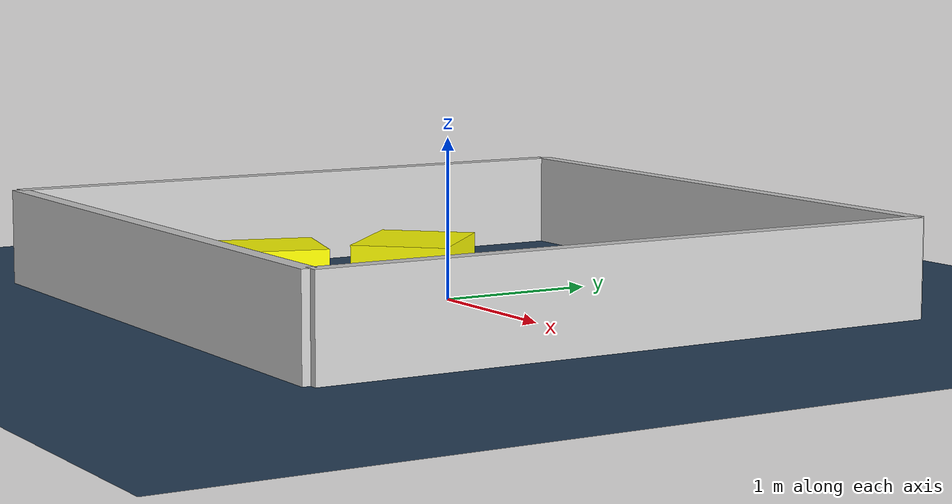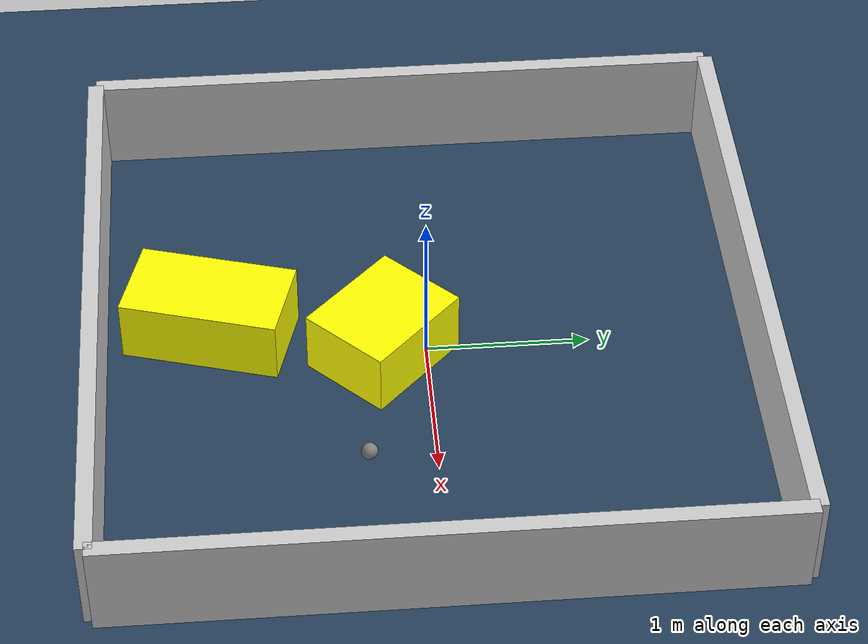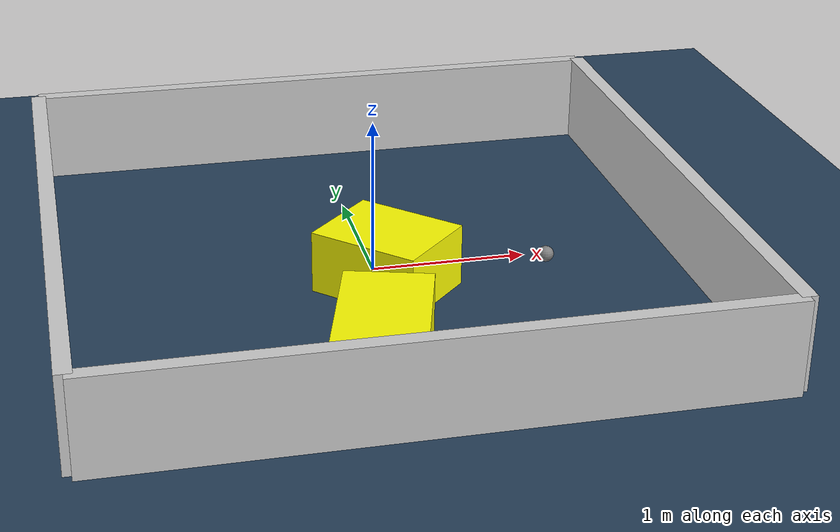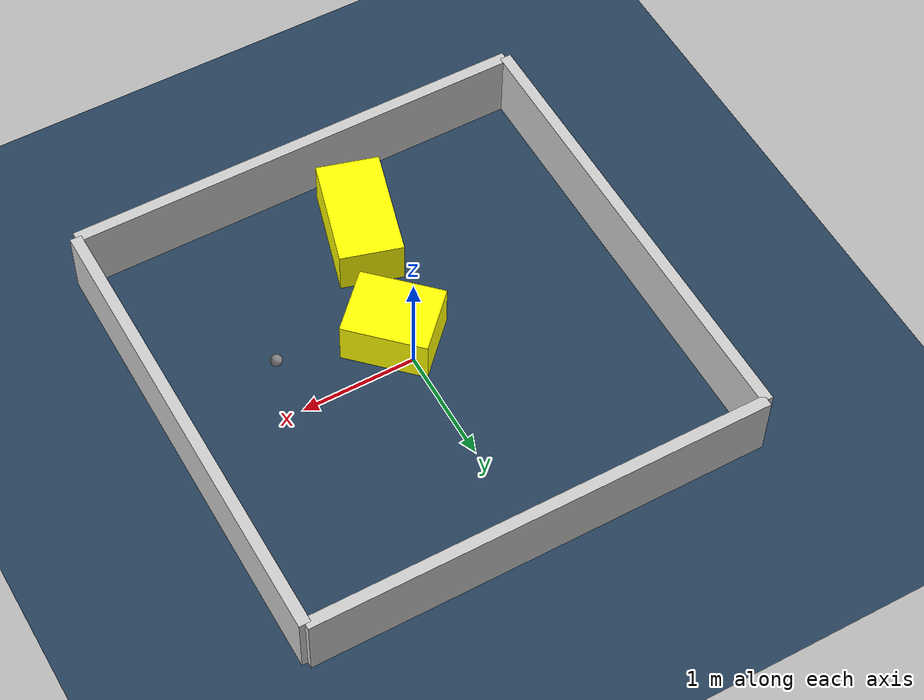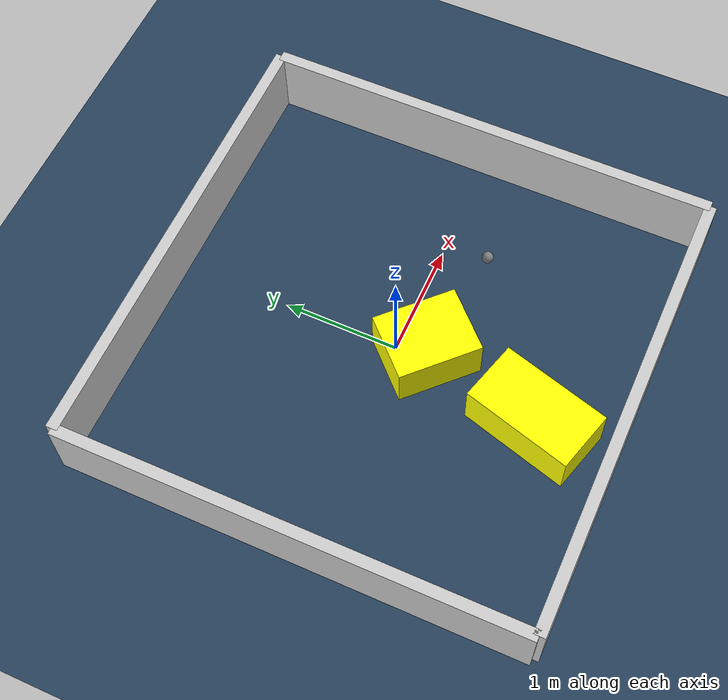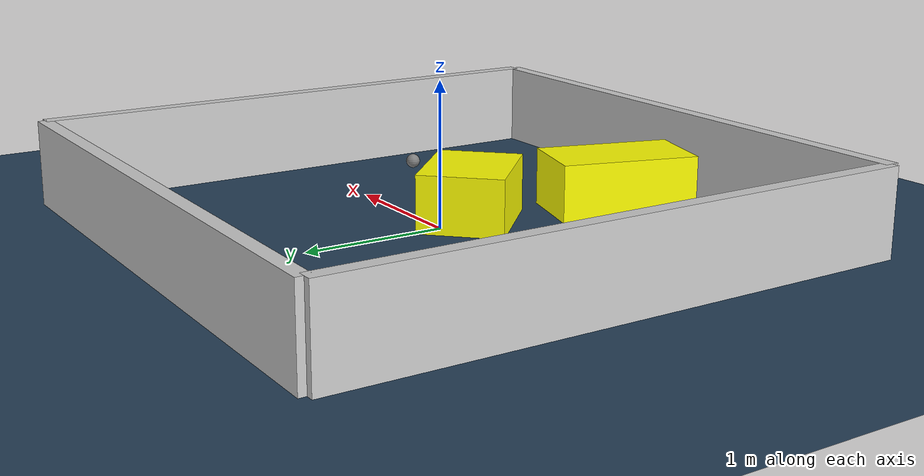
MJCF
<?xml version="1.0" ?>
<mujoco model="generated_environment">
  <option timestep="0.01" integrator="RK4" cone="elliptic"/>
  <default>
    <geom density="1"/>
  </default>
  <asset>
    <texture builtin="gradient" height="3072" rgb1="0.3 0.5 0.7" rgb2="0 0 0" type="skybox" width="512"/>
    <texture builtin="checker" height="300" mark="edge" markrgb="0.8 0.8 0.8" name="groundplane" rgb1="0.2 0.3 0.4" rgb2="0.1 0.2 0.3" type="2d" width="300"/>
    <material name="groundplane" reflectance="0.2" texrepeat="5 5" texture="groundplane" texuniform="true"/>
    <material name="robot" rgba="0.0 1.0 0.0 1"/>
  </asset>
  <worldbody>
    <light dir="0 0 -1" directional="true" pos="0 0 1.5"/>
    <geom condim="4" friction="1.0 0.005 0.001" material="groundplane" name="floor" size="0 0 0.05" type="plane"/>
    <body name="walls">
      <geom name="wall_1" condim="4" pos="-2.0 0.0 0.3" rgba="0.800000011920929 0.800000011920929 0.800000011920929 1.0" size="0.05 2.0 0.3" type="box"/>
      <geom name="wall_2" condim="4" pos="2.0 0.0 0.3" rgba="0.800000011920929 0.800000011920929 0.800000011920929 1.0" size="0.05 2.0 0.3" type="box"/>
      <geom name="wall_3" condim="4" pos="0.0 -2.0 0.3" rgba="0.800000011920929 0.800000011920929 0.800000011920929 1.0" size="2.0 0.05 0.3" type="box"/>
      <geom name="wall_4" condim="4" pos="0.0 2.0 0.3" rgba="0.800000011920929 0.800000011920929 0.800000011920929 1.0" size="2.0 0.05 0.3" type="box"/>
    </body>
    <body name="robot">
      <joint name="joint_x" type="slide" pos="0 0 0" axis="1 0 0"/>
      <joint name="joint_y" type="slide" pos="0 0 0" axis="0 1 0"/>
      <geom name="robot" type="sphere" pos="1.02066955402998 -0.40667202174753925 0.2" size="0.05" mass="5." friction="1.0 0.005 0.0001" condim="4"/>
      <site name="sensor_ball"/>
    </body>
    <body name="obstacle_1_movable">
      <geom name="obstacle_1_movable" condim="4" pos="-0.2174078474381569 -1.310630204285599 0.2" euler="0 0 253.86397100889465" friction="1.0 0.005 0.001" rgba="1 1 0 1" size="0.487125496040745 0.27061172590505 0.2" type="box" mass="0.1"/>
      <joint type="free"/>
    </body>
    <body name="obstacle_2_movable">
      <geom name="obstacle_2_movable" condim="4" pos="0.03569718740092154 -0.26394306272827683 0.2" euler="0 0 45.56052267225215" friction="1.0 0.005 0.001" rgba="1 1 0 1" size="0.2956359382929025 0.3652821067397235 0.2" type="box" mass="0.1"/>
      <joint type="free"/>
    </body>
  </worldbody>
  <actuator>
    <motor name="actuator_x" joint="joint_x" gear="1" ctrlrange="-1 1"/>
    <motor name="actuator_y" joint="joint_y" gear="1" ctrlrange="-1 1"/>
  </actuator>
</mujoco>
